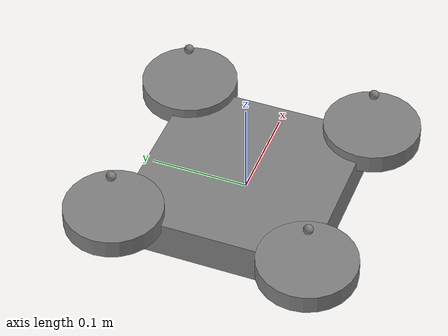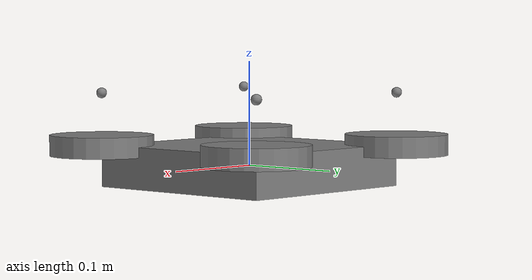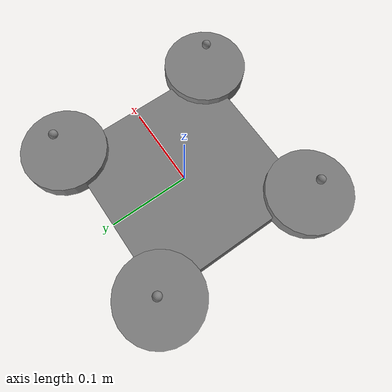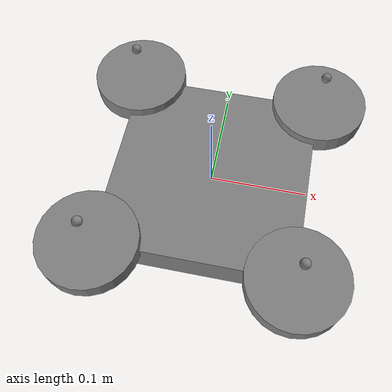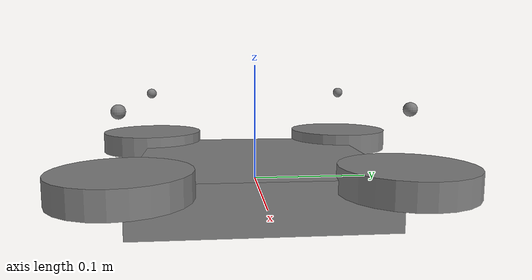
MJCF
<mujoco model="Simple UAV">
  <compiler inertiafromgeom="true"/>

  <option timestep="0.01" gravity="0 0 -9.81" iterations="50" integrator="RK4"/>

  <default>
    <joint damping="1"/>
    <geom friction="1 0.5 0.5" mass="0" margin="0.01"/>
    <motor ctrllimited="true" ctrlrange="0.0 1.0"/>
  </default>

  <worldbody>
    <body name="uav" pos="0 0 0">
      <freejoint/>
      <geom name="base" type="box" size="0.1 0.1 0.02" mass="1"/>

      <!-- Propellers as separate bodies for more accurate simulation -->
      <body name="prop1" pos="-0.1 0.1 0.02">
        <joint name="prop1_joint" type="hinge" axis="0 0 1" limited="false"/>
        <geom name="prop1_geom" type="cylinder" size="0.05 0.01" mass="0.1"/>
        <site name="prop1_thrust" pos="0 0 0.05"/>
      </body>
      <body name="prop2" pos="0.1 0.1 0.02">
        <joint name="prop2_joint" type="hinge" axis="0 0 1" limited="false"/>
        <geom name="prop2_geom" type="cylinder" size="0.05 0.01" mass="0.1"/>
        <site name="prop2_thrust" pos="0 0 0.05"/>
      </body>
      <body name="prop3" pos="-0.1 -0.1 0.02">
        <joint name="prop3_joint" type="hinge" axis="0 0 1" limited="false"/>
        <geom name="prop3_geom" type="cylinder" size="0.05 0.01" mass="0.1"/>
        <site name="prop3_thrust" pos="0 0 0.05"/>
      </body>
      <body name="prop4" pos="0.1 -0.1 0.02">
        <joint name="prop4_joint" type="hinge" axis="0 0 1" limited="false"/>
        <geom name="prop4_geom" type="cylinder" size="0.05 0.01" mass="0.1"/>
        <site name="prop4_thrust" pos="0 0 0.05"/>
      </body>
    </body>
  </worldbody>

  <actuator>
    <motor name="motor1" joint="prop1_joint" gear="1"/>
    <motor name="motor2" joint="prop2_joint" gear="1"/>
    <motor name="motor3" joint="prop3_joint" gear="1"/>
    <motor name="motor4" joint="prop4_joint" gear="1"/>
  </actuator>
</mujoco>
